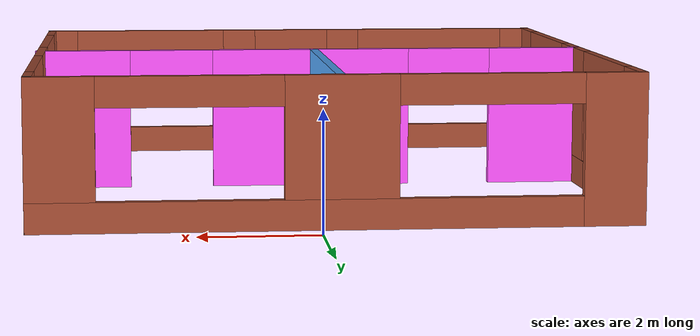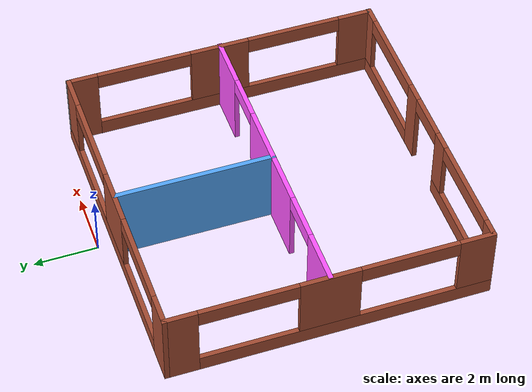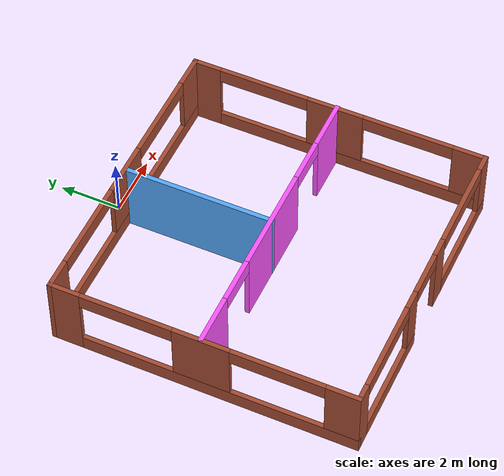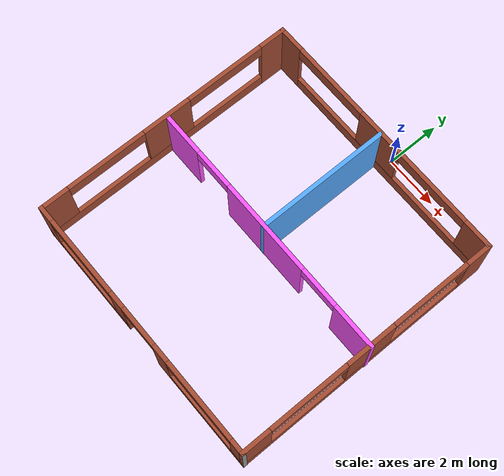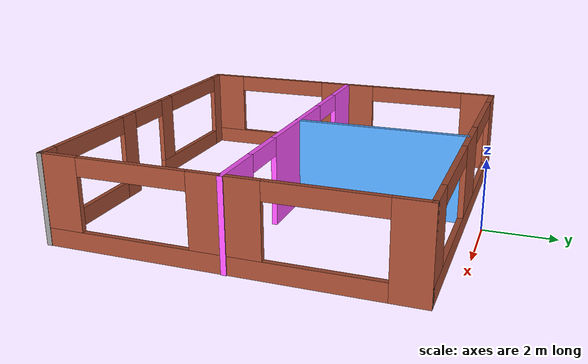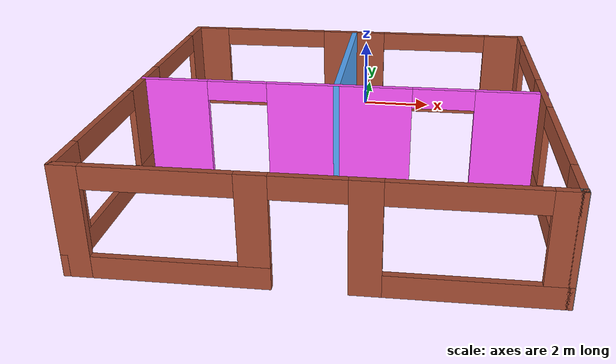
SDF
<?xml version='1.0'?>
<sdf version='1.6'>
  <model name='office'>
    <pose frame=''>-0.282 -5.445 0 0 -0 0</pose>
    <link name='Wall_0'>
      <pose frame=''>-4.938 0 0 0 0 -1.5708</pose>
      <visual name='Wall_0_Visual_0'>
        <pose frame=''>-4.4756 0 1.25 0 -0 0</pose>
        <geometry>
          <box>
            <size>1.04879 0.15 2.5</size>
          </box>
        </geometry>
        <material>
          <script>
            <uri>file://media/materials/scripts/gazebo.material</uri>
            <name>Gazebo/Bricks</name>
          </script>
          <ambient>1 1 1 1</ambient>
        </material>
        <meta>
          <layer>0</layer>
        </meta>
      </visual>
      <collision name='Wall_0_Collision_0'>
        <geometry>
          <box>
            <size>1.04879 0.15 2.5</size>
          </box>
        </geometry>
        <pose frame=''>-4.4756 0 1.25 0 -0 0</pose>
      </collision>
      <visual name='Wall_0_Visual_1'>
        <pose frame=''>0.524397 0 0.25 0 -0 0</pose>
        <geometry>
          <box>
            <size>8.95121 0.15 0.5</size>
          </box>
        </geometry>
        <material>
          <script>
            <uri>file://media/materials/scripts/gazebo.material</uri>
            <name>Gazebo/Bricks</name>
          </script>
          <ambient>1 1 1 1</ambient>
        </material>
        <meta>
          <layer>0</layer>
        </meta>
      </visual>
      <collision name='Wall_0_Collision_1'>
        <geometry>
          <box>
            <size>8.95121 0.15 0.5</size>
          </box>
        </geometry>
        <pose frame=''>0.524397 0 0.25 0 -0 0</pose>
      </collision>
      <visual name='Wall_0_Visual_2'>
        <pose frame=''>-0.029291 0 1.5 0 -0 0</pose>
        <geometry>
          <box>
            <size>1.84383 0.15 2</size>
          </box>
        </geometry>
        <material>
          <script>
            <uri>file://media/materials/scripts/gazebo.material</uri>
            <name>Gazebo/Bricks</name>
          </script>
          <ambient>1 1 1 1</ambient>
        </material>
        <meta>
          <layer>0</layer>
        </meta>
      </visual>
      <collision name='Wall_0_Collision_2'>
        <geometry>
          <box>
            <size>1.84383 0.15 2</size>
          </box>
        </geometry>
        <pose frame=''>-0.029291 0 1.5 0 -0 0</pose>
      </collision>
      <visual name='Wall_0_Visual_3'>
        <pose frame=''>4.44631 0 1.5 0 -0 0</pose>
        <geometry>
          <box>
            <size>1.10737 0.15 2</size>
          </box>
        </geometry>
        <material>
          <script>
            <uri>file://media/materials/scripts/gazebo.material</uri>
            <name>Gazebo/Bricks</name>
          </script>
          <ambient>1 1 1 1</ambient>
        </material>
        <meta>
          <layer>0</layer>
        </meta>
      </visual>
      <collision name='Wall_0_Collision_3'>
        <geometry>
          <box>
            <size>1.10737 0.15 2</size>
          </box>
        </geometry>
        <pose frame=''>4.44631 0 1.5 0 -0 0</pose>
      </collision>
      <visual name='Wall_0_Visual_4'>
        <pose frame=''>-2.45121 0 2.25 0 -0 0</pose>
        <geometry>
          <box>
            <size>3 0.15 0.5</size>
          </box>
        </geometry>
        <material>
          <script>
            <uri>file://media/materials/scripts/gazebo.material</uri>
            <name>Gazebo/Bricks</name>
          </script>
          <ambient>1 1 1 1</ambient>
        </material>
        <meta>
          <layer>0</layer>
        </meta>
      </visual>
      <collision name='Wall_0_Collision_4'>
        <geometry>
          <box>
            <size>3 0.15 0.5</size>
          </box>
        </geometry>
        <pose frame=''>-2.45121 0 2.25 0 -0 0</pose>
      </collision>
      <visual name='Wall_0_Visual_5'>
        <pose frame=''>2.39262 0 2.25 0 -0 0</pose>
        <geometry>
          <box>
            <size>3 0.15 0.5</size>
          </box>
        </geometry>
        <material>
          <script>
            <uri>file://media/materials/scripts/gazebo.material</uri>
            <name>Gazebo/Bricks</name>
          </script>
          <ambient>1 1 1 1</ambient>
        </material>
        <meta>
          <layer>0</layer>
        </meta>
      </visual>
      <collision name='Wall_0_Collision_5'>
        <geometry>
          <box>
            <size>3 0.15 0.5</size>
          </box>
        </geometry>
        <pose frame=''>2.39262 0 2.25 0 -0 0</pose>
      </collision>
    </link>
    <link name='Wall_1'>
      <pose frame=''>-0.013 -4.925 0 0 -0 0</pose>
      <visual name='Wall_1_Visual_0'>
        <pose frame=''>-4.69268 0 1.25 0 -0 0</pose>
        <geometry>
          <box>
            <size>0.614643 0.15 2.5</size>
          </box>
        </geometry>
        <material>
          <script>
            <uri>file://media/materials/scripts/gazebo.material</uri>
            <name>Gazebo/Bricks</name>
          </script>
          <ambient>1 1 1 1</ambient>
        </material>
        <meta>
          <layer>0</layer>
        </meta>
      </visual>
      <collision name='Wall_1_Collision_0'>
        <geometry>
          <box>
            <size>0.614643 0.15 2.5</size>
          </box>
        </geometry>
        <pose frame=''>-4.69268 0 1.25 0 -0 0</pose>
      </collision>
      <visual name='Wall_1_Visual_1'>
        <pose frame=''>1.08612 0 1.25 0 -0 0</pose>
        <geometry>
          <box>
            <size>0.654955 0.15 2.5</size>
          </box>
        </geometry>
        <material>
          <script>
            <uri>file://media/materials/scripts/gazebo.material</uri>
            <name>Gazebo/Bricks</name>
          </script>
          <ambient>1 1 1 1</ambient>
        </material>
        <meta>
          <layer>0</layer>
        </meta>
      </visual>
      <collision name='Wall_1_Collision_1'>
        <geometry>
          <box>
            <size>0.654955 0.15 2.5</size>
          </box>
        </geometry>
        <pose frame=''>1.08612 0 1.25 0 -0 0</pose>
      </collision>
      <visual name='Wall_1_Visual_2'>
        <pose frame=''>-2.56336 0 0.25 0 -0 0</pose>
        <geometry>
          <box>
            <size>3.644 0.15 0.5</size>
          </box>
        </geometry>
        <material>
          <script>
            <uri>file://media/materials/scripts/gazebo.material</uri>
            <name>Gazebo/Bricks</name>
          </script>
          <ambient>1 1 1 1</ambient>
        </material>
        <meta>
          <layer>0</layer>
        </meta>
      </visual>
      <collision name='Wall_1_Collision_2'>
        <geometry>
          <box>
            <size>3.644 0.15 0.5</size>
          </box>
        </geometry>
        <pose frame=''>-2.56336 0 0.25 0 -0 0</pose>
      </collision>
      <visual name='Wall_1_Visual_3'>
        <pose frame=''>3.2068 0 0.25 0 -0 0</pose>
        <geometry>
          <box>
            <size>3.5864 0.15 0.5</size>
          </box>
        </geometry>
        <material>
          <script>
            <uri>file://media/materials/scripts/gazebo.material</uri>
            <name>Gazebo/Bricks</name>
          </script>
          <ambient>1 1 1 1</ambient>
        </material>
        <meta>
          <layer>0</layer>
        </meta>
      </visual>
      <collision name='Wall_1_Collision_3'>
        <geometry>
          <box>
            <size>3.5864 0.15 0.5</size>
          </box>
        </geometry>
        <pose frame=''>3.2068 0 0.25 0 -0 0</pose>
      </collision>
      <visual name='Wall_1_Visual_4'>
        <pose frame=''>-1.06336 0 1.5 0 -0 0</pose>
        <geometry>
          <box>
            <size>0.643998 0.15 2</size>
          </box>
        </geometry>
        <material>
          <script>
            <uri>file://media/materials/scripts/gazebo.material</uri>
            <name>Gazebo/Bricks</name>
          </script>
          <ambient>1 1 1 1</ambient>
        </material>
        <meta>
          <layer>0</layer>
        </meta>
      </visual>
      <collision name='Wall_1_Collision_4'>
        <geometry>
          <box>
            <size>0.643998 0.15 2</size>
          </box>
        </geometry>
        <pose frame=''>-1.06336 0 1.5 0 -0 0</pose>
      </collision>
      <visual name='Wall_1_Visual_5'>
        <pose frame=''>-1.06336 0 1.5 0 -0 0</pose>
        <geometry>
          <box>
            <size>0.643998 0.15 2</size>
          </box>
        </geometry>
        <material>
          <script>
            <uri>file://media/materials/scripts/gazebo.material</uri>
            <name>Gazebo/Bricks</name>
          </script>
          <ambient>1 1 1 1</ambient>
        </material>
        <meta>
          <layer>0</layer>
        </meta>
      </visual>
      <collision name='Wall_1_Collision_5'>
        <geometry>
          <box>
            <size>0.643998 0.15 2</size>
          </box>
        </geometry>
        <pose frame=''>-1.06336 0 1.5 0 -0 0</pose>
      </collision>
      <visual name='Wall_1_Visual_6'>
        <pose frame=''>4.7068 0 1.5 0 -0 0</pose>
        <geometry>
          <box>
            <size>0.586404 0.15 2</size>
          </box>
        </geometry>
        <material>
          <script>
            <uri>file://media/materials/scripts/gazebo.material</uri>
            <name>Gazebo/Bricks</name>
          </script>
          <ambient>1 1 1 1</ambient>
        </material>
        <meta>
          <layer>0</layer>
        </meta>
      </visual>
      <collision name='Wall_1_Collision_6'>
        <geometry>
          <box>
            <size>0.586404 0.15 2</size>
          </box>
        </geometry>
        <pose frame=''>4.7068 0 1.5 0 -0 0</pose>
      </collision>
      <visual name='Wall_1_Visual_7'>
        <pose frame=''>-2.88536 0 2.25 0 -0 0</pose>
        <geometry>
          <box>
            <size>3 0.15 0.5</size>
          </box>
        </geometry>
        <material>
          <script>
            <uri>file://media/materials/scripts/gazebo.material</uri>
            <name>Gazebo/Bricks</name>
          </script>
          <ambient>1 1 1 1</ambient>
        </material>
        <meta>
          <layer>0</layer>
        </meta>
      </visual>
      <collision name='Wall_1_Collision_7'>
        <geometry>
          <box>
            <size>3 0.15 0.5</size>
          </box>
        </geometry>
        <pose frame=''>-2.88536 0 2.25 0 -0 0</pose>
      </collision>
      <visual name='Wall_1_Visual_8'>
        <pose frame=''>2.9136 0 2.25 0 -0 0</pose>
        <geometry>
          <box>
            <size>3 0.15 0.5</size>
          </box>
        </geometry>
        <material>
          <script>
            <uri>file://media/materials/scripts/gazebo.material</uri>
            <name>Gazebo/Bricks</name>
          </script>
          <ambient>1 1 1 1</ambient>
        </material>
        <meta>
          <layer>0</layer>
        </meta>
      </visual>
      <collision name='Wall_1_Collision_8'>
        <geometry>
          <box>
            <size>3 0.15 0.5</size>
          </box>
        </geometry>
        <pose frame=''>2.9136 0 2.25 0 -0 0</pose>
      </collision>
      <visual name='Wall_1_Visual_9'>
        <pose frame=''>0.008641 0 2.25 0 -0 0</pose>
        <geometry>
          <box>
            <size>1.5 0.15 0.5</size>
          </box>
        </geometry>
        <material>
          <script>
            <uri>file://media/materials/scripts/gazebo.material</uri>
            <name>Gazebo/Bricks</name>
          </script>
          <ambient>1 1 1 1</ambient>
        </material>
        <meta>
          <layer>0</layer>
        </meta>
      </visual>
      <collision name='Wall_1_Collision_9'>
        <geometry>
          <box>
            <size>1.5 0.15 0.5</size>
          </box>
        </geometry>
        <pose frame=''>0.008641 0 2.25 0 -0 0</pose>
      </collision>
      <visual name='Wall_1_Visual_10'>
        <pose frame=''>0.008641 0 2.25 0 -0 0</pose>
        <geometry>
          <box>
            <size>1.5 0.15 0.5</size>
          </box>
        </geometry>
        <material>
          <script>
            <uri>file://media/materials/scripts/gazebo.material</uri>
            <name>Gazebo/Bricks</name>
          </script>
          <ambient>1 1 1 1</ambient>
        </material>
        <meta>
          <layer>0</layer>
        </meta>
      </visual>
      <collision name='Wall_1_Collision_10'>
        <geometry>
          <box>
            <size>1.5 0.15 0.5</size>
          </box>
        </geometry>
        <pose frame=''>0.008641 0 2.25 0 -0 0</pose>
      </collision>
    </link>
    <link name='Wall_14'>
      <pose frame=''>0.013 0.038 0 0 -0 0</pose>
      <visual name='Wall_14_Visual_0'>
        <pose frame=''>-4.14875 0 1.25 0 -0 0</pose>
        <geometry>
          <box>
            <size>1.7025 0.15 2.5</size>
          </box>
        </geometry>
        <material>
          <script>
            <uri>file://media/materials/scripts/gazebo.material</uri>
            <name>Gazebo/Grey</name>
          </script>
          <ambient>1 0.333333 1 1</ambient>
        </material>
        <meta>
          <layer>0</layer>
        </meta>
      </visual>
      <collision name='Wall_14_Collision_0'>
        <geometry>
          <box>
            <size>1.7025 0.15 2.5</size>
          </box>
        </geometry>
        <pose frame=''>-4.14875 0 1.25 0 -0 0</pose>
      </collision>
      <visual name='Wall_14_Visual_1'>
        <pose frame=''>-0.00051 0 1.25 0 -0 0</pose>
        <geometry>
          <box>
            <size>3.59398 0.15 2.5</size>
          </box>
        </geometry>
        <material>
          <script>
            <uri>file://media/materials/scripts/gazebo.material</uri>
            <name>Gazebo/Grey</name>
          </script>
          <ambient>1 0.333333 1 1</ambient>
        </material>
        <meta>
          <layer>0</layer>
        </meta>
      </visual>
      <collision name='Wall_14_Collision_1'>
        <geometry>
          <box>
            <size>3.59398 0.15 2.5</size>
          </box>
        </geometry>
        <pose frame=''>-0.00051 0 1.25 0 -0 0</pose>
      </collision>
      <visual name='Wall_14_Visual_2'>
        <pose frame=''>4.14824 0 1.25 0 -0 0</pose>
        <geometry>
          <box>
            <size>1.70352 0.15 2.5</size>
          </box>
        </geometry>
        <material>
          <script>
            <uri>file://media/materials/scripts/gazebo.material</uri>
            <name>Gazebo/Grey</name>
          </script>
          <ambient>1 0.333333 1 1</ambient>
        </material>
        <meta>
          <layer>0</layer>
        </meta>
      </visual>
      <collision name='Wall_14_Collision_2'>
        <geometry>
          <box>
            <size>1.70352 0.15 2.5</size>
          </box>
        </geometry>
        <pose frame=''>4.14824 0 1.25 0 -0 0</pose>
      </collision>
      <visual name='Wall_14_Visual_3'>
        <pose frame=''>-2.5475 0 2.25 0 -0 0</pose>
        <geometry>
          <box>
            <size>1.5 0.15 0.5</size>
          </box>
        </geometry>
        <material>
          <script>
            <uri>file://media/materials/scripts/gazebo.material</uri>
            <name>Gazebo/Grey</name>
          </script>
          <ambient>1 0.333333 1 1</ambient>
        </material>
        <meta>
          <layer>0</layer>
        </meta>
      </visual>
      <collision name='Wall_14_Collision_3'>
        <geometry>
          <box>
            <size>1.5 0.15 0.5</size>
          </box>
        </geometry>
        <pose frame=''>-2.5475 0 2.25 0 -0 0</pose>
      </collision>
      <visual name='Wall_14_Visual_4'>
        <pose frame=''>2.54648 0 2.25 0 -0 0</pose>
        <geometry>
          <box>
            <size>1.5 0.15 0.5</size>
          </box>
        </geometry>
        <material>
          <script>
            <uri>file://media/materials/scripts/gazebo.material</uri>
            <name>Gazebo/Grey</name>
          </script>
          <ambient>1 0.333333 1 1</ambient>
        </material>
        <meta>
          <layer>0</layer>
        </meta>
      </visual>
      <collision name='Wall_14_Collision_4'>
        <geometry>
          <box>
            <size>1.5 0.15 0.5</size>
          </box>
        </geometry>
        <pose frame=''>2.54648 0 2.25 0 -0 0</pose>
      </collision>
    </link>
    <link name='Wall_18'>
      <collision name='Wall_18_Collision'>
        <geometry>
          <box>
            <size>5 0.15 2.5</size>
          </box>
        </geometry>
        <pose frame=''>0 0 1.25 0 -0 0</pose>
      </collision>
      <visual name='Wall_18_Visual'>
        <pose frame=''>0 0 1.25 0 -0 0</pose>
        <geometry>
          <box>
            <size>5 0.15 2.5</size>
          </box>
        </geometry>
        <material>
          <script>
            <uri>file://media/materials/scripts/gazebo.material</uri>
            <name>Gazebo/Grey</name>
          </script>
          <ambient>0.333333 0.666667 1 1</ambient>
        </material>
        <meta>
          <layer>0</layer>
        </meta>
      </visual>
      <pose frame=''>-0.045871 2.45735 0 0 0 -1.5708</pose>
    </link>
    <link name='Wall_2'>
      <collision name='Wall_2_Collision'>
        <geometry>
          <box>
            <size>0.15 0.15 2.5</size>
          </box>
        </geometry>
        <pose frame=''>0 0 1.25 0 -0 0</pose>
      </collision>
      <visual name='Wall_2_Visual'>
        <pose frame=''>0 0 1.25 0 -0 0</pose>
        <geometry>
          <box>
            <size>0.15 0.15 2.5</size>
          </box>
        </geometry>
        <material>
          <script>
            <uri>file://media/materials/scripts/gazebo.material</uri>
            <name>Gazebo/Grey</name>
          </script>
          <ambient>1 1 1 1</ambient>
        </material>
        <meta>
          <layer>0</layer>
        </meta>
      </visual>
      <pose frame=''>4.912 -4.925 0 0 -0 0</pose>
    </link>
    <link name='Wall_4'>
      <pose frame=''>-0.013 4.925 0 0 -0 0</pose>
      <visual name='Wall_4_Visual_0'>
        <pose frame=''>-4.48801 0 1.25 0 -0 0</pose>
        <geometry>
          <box>
            <size>1.02398 0.15 2.5</size>
          </box>
        </geometry>
        <material>
          <script>
            <uri>file://media/materials/scripts/gazebo.material</uri>
            <name>Gazebo/Bricks</name>
          </script>
          <ambient>1 1 1 1</ambient>
        </material>
        <meta>
          <layer>0</layer>
        </meta>
      </visual>
      <collision name='Wall_4_Collision_0'>
        <geometry>
          <box>
            <size>1.02398 0.15 2.5</size>
          </box>
        </geometry>
        <pose frame=''>-4.48801 0 1.25 0 -0 0</pose>
      </collision>
      <visual name='Wall_4_Visual_1'>
        <pose frame=''>0.511991 0 0.25 0 -0 0</pose>
        <geometry>
          <box>
            <size>8.97602 0.15 0.5</size>
          </box>
        </geometry>
        <material>
          <script>
            <uri>file://media/materials/scripts/gazebo.material</uri>
            <name>Gazebo/Bricks</name>
          </script>
          <ambient>1 1 1 1</ambient>
        </material>
        <meta>
          <layer>0</layer>
        </meta>
      </visual>
      <collision name='Wall_4_Collision_1'>
        <geometry>
          <box>
            <size>8.97602 0.15 0.5</size>
          </box>
        </geometry>
        <pose frame=''>0.511991 0 0.25 0 -0 0</pose>
      </collision>
      <visual name='Wall_4_Visual_2'>
        <pose frame=''>-0.054103 0 1.5 0 -0 0</pose>
        <geometry>
          <box>
            <size>1.84383 0.15 2</size>
          </box>
        </geometry>
        <material>
          <script>
            <uri>file://media/materials/scripts/gazebo.material</uri>
            <name>Gazebo/Bricks</name>
          </script>
          <ambient>1 1 1 1</ambient>
        </material>
        <meta>
          <layer>0</layer>
        </meta>
      </visual>
      <collision name='Wall_4_Collision_2'>
        <geometry>
          <box>
            <size>1.84383 0.15 2</size>
          </box>
        </geometry>
        <pose frame=''>-0.054103 0 1.5 0 -0 0</pose>
      </collision>
      <visual name='Wall_4_Visual_3'>
        <pose frame=''>4.43391 0 1.5 0 -0 0</pose>
        <geometry>
          <box>
            <size>1.13219 0.15 2</size>
          </box>
        </geometry>
        <material>
          <script>
            <uri>file://media/materials/scripts/gazebo.material</uri>
            <name>Gazebo/Bricks</name>
          </script>
          <ambient>1 1 1 1</ambient>
        </material>
        <meta>
          <layer>0</layer>
        </meta>
      </visual>
      <collision name='Wall_4_Collision_3'>
        <geometry>
          <box>
            <size>1.13219 0.15 2</size>
          </box>
        </geometry>
        <pose frame=''>4.43391 0 1.5 0 -0 0</pose>
      </collision>
      <visual name='Wall_4_Visual_4'>
        <pose frame=''>-2.47602 0 2.25 0 -0 0</pose>
        <geometry>
          <box>
            <size>3 0.15 0.5</size>
          </box>
        </geometry>
        <material>
          <script>
            <uri>file://media/materials/scripts/gazebo.material</uri>
            <name>Gazebo/Bricks</name>
          </script>
          <ambient>1 1 1 1</ambient>
        </material>
        <meta>
          <layer>0</layer>
        </meta>
      </visual>
      <collision name='Wall_4_Collision_4'>
        <geometry>
          <box>
            <size>3 0.15 0.5</size>
          </box>
        </geometry>
        <pose frame=''>-2.47602 0 2.25 0 -0 0</pose>
      </collision>
      <visual name='Wall_4_Visual_5'>
        <pose frame=''>2.36781 0 2.25 0 -0 0</pose>
        <geometry>
          <box>
            <size>3 0.15 0.5</size>
          </box>
        </geometry>
        <material>
          <script>
            <uri>file://media/materials/scripts/gazebo.material</uri>
            <name>Gazebo/Bricks</name>
          </script>
          <ambient>1 1 1 1</ambient>
        </material>
        <meta>
          <layer>0</layer>
        </meta>
      </visual>
      <collision name='Wall_4_Collision_5'>
        <geometry>
          <box>
            <size>3 0.15 0.5</size>
          </box>
        </geometry>
        <pose frame=''>2.36781 0 2.25 0 -0 0</pose>
      </collision>
    </link>
    <link name='Wall_5'>
      <collision name='Wall_5_Collision'>
        <geometry>
          <box>
            <size>0.15 0.15 2.5</size>
          </box>
        </geometry>
        <pose frame=''>0 0 1.25 0 -0 0</pose>
      </collision>
      <visual name='Wall_5_Visual'>
        <pose frame=''>0 0 1.25 0 -0 0</pose>
        <geometry>
          <box>
            <size>0.15 0.15 2.5</size>
          </box>
        </geometry>
        <material>
          <script>
            <uri>file://media/materials/scripts/gazebo.material</uri>
            <name>Gazebo/Grey</name>
          </script>
          <ambient>1 1 1 1</ambient>
        </material>
        <meta>
          <layer>0</layer>
        </meta>
      </visual>
      <pose frame=''>4.912 4.925 0 0 -0 0</pose>
    </link>
    <link name='Wall_6'>
      <pose frame=''>4.912 0 0 0 0 -1.5708</pose>
      <visual name='Wall_6_Visual_0'>
        <pose frame=''>-4.50971 0 1.25 0 -0 0</pose>
        <geometry>
          <box>
            <size>0.980571 0.15 2.5</size>
          </box>
        </geometry>
        <material>
          <script>
            <uri>file://media/materials/scripts/gazebo.material</uri>
            <name>Gazebo/Bricks</name>
          </script>
          <ambient>1 1 1 1</ambient>
        </material>
        <meta>
          <layer>0</layer>
        </meta>
      </visual>
      <collision name='Wall_6_Collision_0'>
        <geometry>
          <box>
            <size>0.980571 0.15 2.5</size>
          </box>
        </geometry>
        <pose frame=''>-4.50971 0 1.25 0 -0 0</pose>
      </collision>
      <visual name='Wall_6_Visual_1'>
        <pose frame=''>0.490285 0 0.25 0 -0 0</pose>
        <geometry>
          <box>
            <size>9.01943 0.15 0.5</size>
          </box>
        </geometry>
        <material>
          <script>
            <uri>file://media/materials/scripts/gazebo.material</uri>
            <name>Gazebo/Bricks</name>
          </script>
          <ambient>1 1 1 1</ambient>
        </material>
        <meta>
          <layer>0</layer>
        </meta>
      </visual>
      <collision name='Wall_6_Collision_1'>
        <geometry>
          <box>
            <size>9.01943 0.15 0.5</size>
          </box>
        </geometry>
        <pose frame=''>0.490285 0 0.25 0 -0 0</pose>
      </collision>
      <visual name='Wall_6_Visual_2'>
        <pose frame=''>-0.074773 0 1.5 0 -0 0</pose>
        <geometry>
          <box>
            <size>1.88931 0.15 2</size>
          </box>
        </geometry>
        <material>
          <script>
            <uri>file://media/materials/scripts/gazebo.material</uri>
            <name>Gazebo/Bricks</name>
          </script>
          <ambient>1 1 1 1</ambient>
        </material>
        <meta>
          <layer>0</layer>
        </meta>
      </visual>
      <collision name='Wall_6_Collision_2'>
        <geometry>
          <box>
            <size>1.88931 0.15 2</size>
          </box>
        </geometry>
        <pose frame=''>-0.074773 0 1.5 0 -0 0</pose>
      </collision>
      <visual name='Wall_6_Visual_3'>
        <pose frame=''>4.43494 0 1.5 0 -0 0</pose>
        <geometry>
          <box>
            <size>1.13012 0.15 2</size>
          </box>
        </geometry>
        <material>
          <script>
            <uri>file://media/materials/scripts/gazebo.material</uri>
            <name>Gazebo/Bricks</name>
          </script>
          <ambient>1 1 1 1</ambient>
        </material>
        <meta>
          <layer>0</layer>
        </meta>
      </visual>
      <collision name='Wall_6_Collision_3'>
        <geometry>
          <box>
            <size>1.13012 0.15 2</size>
          </box>
        </geometry>
        <pose frame=''>4.43494 0 1.5 0 -0 0</pose>
      </collision>
      <visual name='Wall_6_Visual_4'>
        <pose frame=''>-2.51943 0 2.25 0 -0 0</pose>
        <geometry>
          <box>
            <size>3 0.15 0.5</size>
          </box>
        </geometry>
        <material>
          <script>
            <uri>file://media/materials/scripts/gazebo.material</uri>
            <name>Gazebo/Bricks</name>
          </script>
          <ambient>1 1 1 1</ambient>
        </material>
        <meta>
          <layer>0</layer>
        </meta>
      </visual>
      <collision name='Wall_6_Collision_4'>
        <geometry>
          <box>
            <size>3 0.15 0.5</size>
          </box>
        </geometry>
        <pose frame=''>-2.51943 0 2.25 0 -0 0</pose>
      </collision>
      <visual name='Wall_6_Visual_5'>
        <pose frame=''>2.36988 0 2.25 0 -0 0</pose>
        <geometry>
          <box>
            <size>3 0.15 0.5</size>
          </box>
        </geometry>
        <material>
          <script>
            <uri>file://media/materials/scripts/gazebo.material</uri>
            <name>Gazebo/Bricks</name>
          </script>
          <ambient>1 1 1 1</ambient>
        </material>
        <meta>
          <layer>0</layer>
        </meta>
      </visual>
      <collision name='Wall_6_Collision_5'>
        <geometry>
          <box>
            <size>3 0.15 0.5</size>
          </box>
        </geometry>
        <pose frame=''>2.36988 0 2.25 0 -0 0</pose>
      </collision>
    </link>
    <link name='Wall_7'>
      <collision name='Wall_7_Collision'>
        <geometry>
          <box>
            <size>0.16 0.15 2.5</size>
          </box>
        </geometry>
        <pose frame=''>0 0 1.25 0 -0 0</pose>
      </collision>
      <visual name='Wall_7_Visual'>
        <pose frame=''>0 0 1.25 0 -0 0</pose>
        <geometry>
          <box>
            <size>0.16 0.15 2.5</size>
          </box>
        </geometry>
        <material>
          <script>
            <uri>file://media/materials/scripts/gazebo.material</uri>
            <name>Gazebo/Grey</name>
          </script>
          <ambient>1 1 1 1</ambient>
        </material>
        <meta>
          <layer>0</layer>
        </meta>
      </visual>
      <pose frame=''>4.917 -4.925 0 0 -0 0</pose>
    </link>
    <static>1</static>
  </model>
</sdf>
